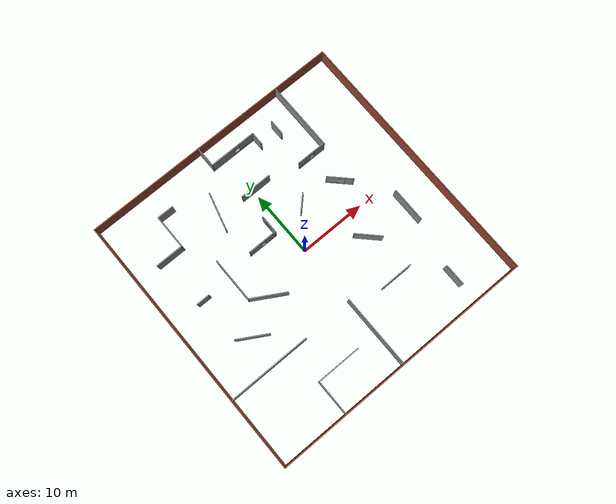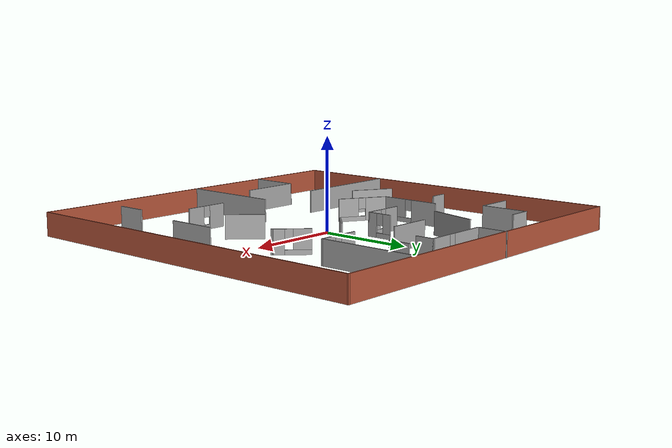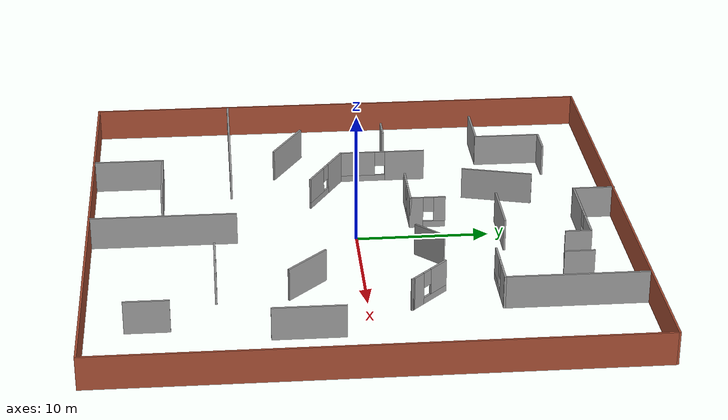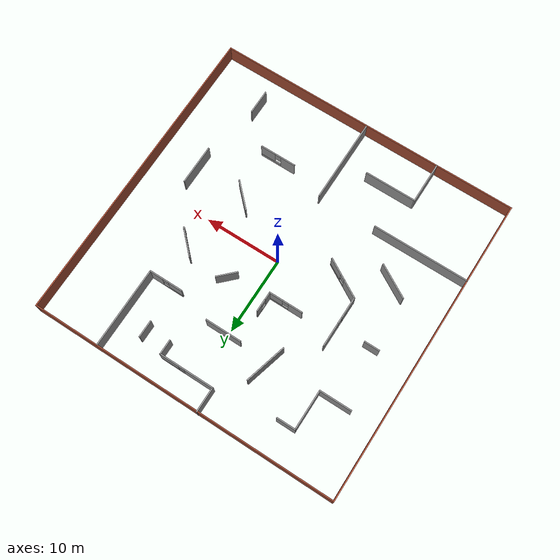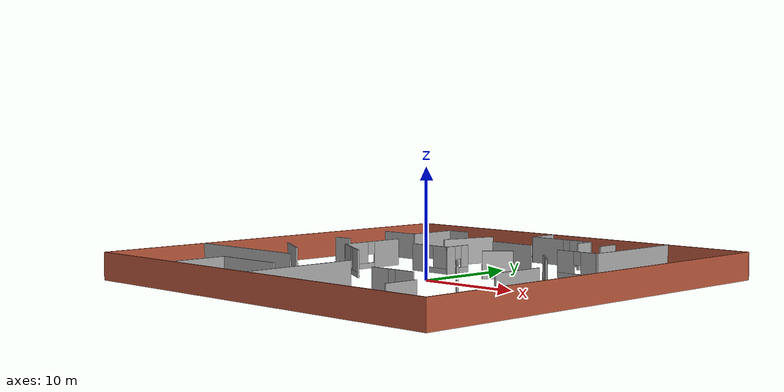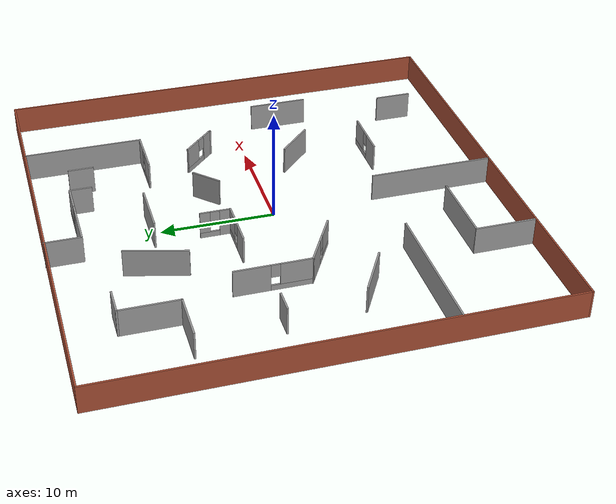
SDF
<?xml version='1.0'?>
<sdf version='1.6'>
  <model name='house'>
    <pose frame=''>0 0.01738 0 0 -0 0</pose>
    <link name='Wall_0'>
      <collision name='Wall_0_Collision'>
        <geometry>
          <box>
            <size>40.15 0.15 2.5</size>
          </box>
        </geometry>
        <pose frame=''>0 0 1.25 0 -0 0</pose>
      </collision>
      <visual name='Wall_0_Visual'>
        <pose frame=''>0 0 1.25 0 -0 0</pose>
        <geometry>
          <box>
            <size>40.15 0.15 2.5</size>
          </box>
        </geometry>
        <material>
          <script>
            <uri>file://media/materials/scripts/gazebo.material</uri>
            <name>Gazebo/Bricks</name>
          </script>
          <ambient>1 1 1 1</ambient>
        </material>
        <meta>
          <layer>0</layer>
        </meta>
      </visual>
      <pose frame=''>0 -20.0174 0 0 -0 0</pose>
    </link>
    <link name='Wall_10'>
      <collision name='Wall_10_Collision'>
        <geometry>
          <box>
            <size>2.5 0.15 2.5</size>
          </box>
        </geometry>
        <pose frame=''>0 0 1.25 0 -0 0</pose>
      </collision>
      <visual name='Wall_10_Visual'>
        <pose frame=''>0 0 1.25 0 -0 0</pose>
        <geometry>
          <box>
            <size>2.5 0.15 2.5</size>
          </box>
        </geometry>
        <material>
          <script>
            <uri>file://media/materials/scripts/gazebo.material</uri>
            <name>Gazebo/Grey</name>
          </script>
          <ambient>1 1 1 1</ambient>
        </material>
        <meta>
          <layer>0</layer>
        </meta>
      </visual>
      <pose frame=''>-11.265 15.818 0 0 -0 0</pose>
    </link>
    <link name='Wall_13'>
      <collision name='Wall_13_Collision'>
        <geometry>
          <box>
            <size>11 0.15 2.5</size>
          </box>
        </geometry>
        <pose frame=''>0 0 1.25 0 -0 0</pose>
      </collision>
      <visual name='Wall_13_Visual'>
        <pose frame=''>0 0 1.25 0 -0 0</pose>
        <geometry>
          <box>
            <size>11 0.15 2.5</size>
          </box>
        </geometry>
        <material>
          <script>
            <uri>file://media/materials/scripts/gazebo.material</uri>
            <name>Gazebo/Grey</name>
          </script>
          <ambient>1 1 1 1</ambient>
        </material>
        <meta>
          <layer>0</layer>
        </meta>
      </visual>
      <pose frame=''>-0.021227 -14.5085 0 0 -0 1.5708</pose>
    </link>
    <link name='Wall_15'>
      <collision name='Wall_15_Collision'>
        <geometry>
          <box>
            <size>12.5 0.15 2.5</size>
          </box>
        </geometry>
        <pose frame=''>0 0 1.25 0 -0 0</pose>
      </collision>
      <visual name='Wall_15_Visual'>
        <pose frame=''>0 0 1.25 0 -0 0</pose>
        <geometry>
          <box>
            <size>12.5 0.15 2.5</size>
          </box>
        </geometry>
        <material>
          <script>
            <uri>file://media/materials/scripts/gazebo.material</uri>
            <name>Gazebo/Grey</name>
          </script>
          <ambient>1 1 1 1</ambient>
        </material>
        <meta>
          <layer>0</layer>
        </meta>
      </visual>
      <pose frame=''>-13.7911 -9.28806 0 0 -0 0</pose>
    </link>
    <link name='Wall_18'>
      <collision name='Wall_18_Collision'>
        <geometry>
          <box>
            <size>5.5 0.15 2.5</size>
          </box>
        </geometry>
        <pose frame=''>0 0 1.25 0 -0 0</pose>
      </collision>
      <visual name='Wall_18_Visual'>
        <pose frame=''>0 0 1.25 0 -0 0</pose>
        <geometry>
          <box>
            <size>5.5 0.15 2.5</size>
          </box>
        </geometry>
        <material>
          <script>
            <uri>file://media/materials/scripts/gazebo.material</uri>
            <name>Gazebo/Grey</name>
          </script>
          <ambient>1 1 1 1</ambient>
        </material>
        <meta>
          <layer>0</layer>
        </meta>
      </visual>
      <pose frame=''>-9.87128 -17.3196 0 0 -0 1.5708</pose>
    </link>
    <link name='Wall_2'>
      <collision name='Wall_2_Collision'>
        <geometry>
          <box>
            <size>40.15 0.15 2.5</size>
          </box>
        </geometry>
        <pose frame=''>0 0 1.25 0 -0 0</pose>
      </collision>
      <visual name='Wall_2_Visual'>
        <pose frame=''>0 0 1.25 0 -0 0</pose>
        <geometry>
          <box>
            <size>40.15 0.15 2.5</size>
          </box>
        </geometry>
        <material>
          <script>
            <uri>file://media/materials/scripts/gazebo.material</uri>
            <name>Gazebo/Bricks</name>
          </script>
          <ambient>1 1 1 1</ambient>
        </material>
        <meta>
          <layer>0</layer>
        </meta>
      </visual>
      <pose frame=''>-20 -0.01738 0 0 -0 1.5708</pose>
    </link>
    <link name='Wall_20'>
      <collision name='Wall_20_Collision'>
        <geometry>
          <box>
            <size>6.75 0.15 2.5</size>
          </box>
        </geometry>
        <pose frame=''>0 0 1.25 0 -0 0</pose>
      </collision>
      <visual name='Wall_20_Visual'>
        <pose frame=''>0 0 1.25 0 -0 0</pose>
        <geometry>
          <box>
            <size>6.75 0.15 2.5</size>
          </box>
        </geometry>
        <material>
          <script>
            <uri>file://media/materials/scripts/gazebo.material</uri>
            <name>Gazebo/Grey</name>
          </script>
          <ambient>1 1 1 1</ambient>
        </material>
        <meta>
          <layer>0</layer>
        </meta>
      </visual>
      <pose frame=''>-6.57128 -14.6446 0 0 -0 0</pose>
    </link>
    <link name='Wall_22'>
      <collision name='Wall_22_Collision'>
        <geometry>
          <box>
            <size>0.25 0.15 2.5</size>
          </box>
        </geometry>
        <pose frame=''>0 0 1.25 0 -0 0</pose>
      </collision>
      <visual name='Wall_22_Visual'>
        <pose frame=''>0 0 1.25 0 -0 0</pose>
        <geometry>
          <box>
            <size>0.25 0.15 2.5</size>
          </box>
        </geometry>
        <material>
          <script>
            <uri>file://media/materials/scripts/gazebo.material</uri>
            <name>Gazebo/Grey</name>
          </script>
          <ambient>1 1 1 1</ambient>
        </material>
        <meta>
          <layer>0</layer>
        </meta>
      </visual>
      <pose frame=''>11.211 3.05252 0 0 -0 2.0944</pose>
    </link>
    <link name='Wall_23'>
      <pose frame=''>9.91319 4.36861 0 0 -0 2.35619</pose>
      <visual name='Wall_23_Visual_0'>
        <pose frame=''>-1.28689 0 1.25 0 -0 0</pose>
        <geometry>
          <box>
            <size>1.17622 0.15 2.5</size>
          </box>
        </geometry>
        <material>
          <script>
            <uri>file://media/materials/scripts/gazebo.material</uri>
            <name>Gazebo/Grey</name>
          </script>
          <ambient>1 1 1 1</ambient>
        </material>
        <meta>
          <layer>0</layer>
        </meta>
      </visual>
      <collision name='Wall_23_Collision_0'>
        <geometry>
          <box>
            <size>1.17622 0.15 2.5</size>
          </box>
        </geometry>
        <pose frame=''>-1.28689 0 1.25 0 -0 0</pose>
      </collision>
      <visual name='Wall_23_Visual_1'>
        <pose frame=''>0.588111 0 0.25 0 -0 0</pose>
        <geometry>
          <box>
            <size>2.57378 0.15 0.5</size>
          </box>
        </geometry>
        <material>
          <script>
            <uri>file://media/materials/scripts/gazebo.material</uri>
            <name>Gazebo/Grey</name>
          </script>
          <ambient>1 1 1 1</ambient>
        </material>
        <meta>
          <layer>0</layer>
        </meta>
      </visual>
      <collision name='Wall_23_Collision_1'>
        <geometry>
          <box>
            <size>2.57378 0.15 0.5</size>
          </box>
        </geometry>
        <pose frame=''>0.588111 0 0.25 0 -0 0</pose>
      </collision>
      <visual name='Wall_23_Visual_2'>
        <pose frame=''>0.988111 0 1.5 0 -0 0</pose>
        <geometry>
          <box>
            <size>1.77378 0.15 2</size>
          </box>
        </geometry>
        <material>
          <script>
            <uri>file://media/materials/scripts/gazebo.material</uri>
            <name>Gazebo/Grey</name>
          </script>
          <ambient>1 1 1 1</ambient>
        </material>
        <meta>
          <layer>0</layer>
        </meta>
      </visual>
      <collision name='Wall_23_Collision_2'>
        <geometry>
          <box>
            <size>1.77378 0.15 2</size>
          </box>
        </geometry>
        <pose frame=''>0.988111 0 1.5 0 -0 0</pose>
      </collision>
      <visual name='Wall_23_Visual_3'>
        <pose frame=''>-0.298779 0 1.9 0 -0 0</pose>
        <geometry>
          <box>
            <size>0.8 0.15 1.2</size>
          </box>
        </geometry>
        <material>
          <script>
            <uri>file://media/materials/scripts/gazebo.material</uri>
            <name>Gazebo/Grey</name>
          </script>
          <ambient>1 1 1 1</ambient>
        </material>
        <meta>
          <layer>0</layer>
        </meta>
      </visual>
      <collision name='Wall_23_Collision_3'>
        <geometry>
          <box>
            <size>0.8 0.15 1.2</size>
          </box>
        </geometry>
        <pose frame=''>-0.298779 0 1.9 0 -0 0</pose>
      </collision>
    </link>
    <link name='Wall_25'>
      <collision name='Wall_25_Collision'>
        <geometry>
          <box>
            <size>4.75 0.15 2.5</size>
          </box>
        </geometry>
        <pose frame=''>0 0 1.25 0 -0 0</pose>
      </collision>
      <visual name='Wall_25_Visual'>
        <pose frame=''>0 0 1.25 0 -0 0</pose>
        <geometry>
          <box>
            <size>4.75 0.15 2.5</size>
          </box>
        </geometry>
        <material>
          <script>
            <uri>file://media/materials/scripts/gazebo.material</uri>
            <name>Gazebo/Grey</name>
          </script>
          <ambient>1 1 1 1</ambient>
        </material>
        <meta>
          <layer>0</layer>
        </meta>
      </visual>
      <pose frame=''>0.382179 10.8403 0 0 -0 0</pose>
    </link>
    <link name='Wall_27'>
      <pose frame=''>-10.116 2.82942 0 0 -0 -1.5708</pose>
      <visual name='Wall_27_Visual_0'>
        <pose frame=''>-1.8027 0 1.25 0 -0 0</pose>
        <geometry>
          <box>
            <size>3.14461 0.15 2.5</size>
          </box>
        </geometry>
        <material>
          <script>
            <uri>file://media/materials/scripts/gazebo.material</uri>
            <name>Gazebo/Grey</name>
          </script>
          <ambient>1 1 1 1</ambient>
        </material>
        <meta>
          <layer>0</layer>
        </meta>
      </visual>
      <collision name='Wall_27_Collision_0'>
        <geometry>
          <box>
            <size>3.14461 0.15 2.5</size>
          </box>
        </geometry>
        <pose frame=''>-1.8027 0 1.25 0 -0 0</pose>
      </collision>
      <visual name='Wall_27_Visual_1'>
        <pose frame=''>1.5723 0 0.25 0 -0 0</pose>
        <geometry>
          <box>
            <size>3.60539 0.15 0.5</size>
          </box>
        </geometry>
        <material>
          <script>
            <uri>file://media/materials/scripts/gazebo.material</uri>
            <name>Gazebo/Grey</name>
          </script>
          <ambient>1 1 1 1</ambient>
        </material>
        <meta>
          <layer>0</layer>
        </meta>
      </visual>
      <collision name='Wall_27_Collision_1'>
        <geometry>
          <box>
            <size>3.60539 0.15 0.5</size>
          </box>
        </geometry>
        <pose frame=''>1.5723 0 0.25 0 -0 0</pose>
      </collision>
      <visual name='Wall_27_Visual_2'>
        <pose frame=''>1.9723 0 1.5 0 -0 0</pose>
        <geometry>
          <box>
            <size>2.80539 0.15 2</size>
          </box>
        </geometry>
        <material>
          <script>
            <uri>file://media/materials/scripts/gazebo.material</uri>
            <name>Gazebo/Grey</name>
          </script>
          <ambient>1 1 1 1</ambient>
        </material>
        <meta>
          <layer>0</layer>
        </meta>
      </visual>
      <collision name='Wall_27_Collision_2'>
        <geometry>
          <box>
            <size>2.80539 0.15 2</size>
          </box>
        </geometry>
        <pose frame=''>1.9723 0 1.5 0 -0 0</pose>
      </collision>
      <visual name='Wall_27_Visual_3'>
        <pose frame=''>0.169607 0 1.9 0 -0 0</pose>
        <geometry>
          <box>
            <size>0.8 0.15 1.2</size>
          </box>
        </geometry>
        <material>
          <script>
            <uri>file://media/materials/scripts/gazebo.material</uri>
            <name>Gazebo/Grey</name>
          </script>
          <ambient>1 1 1 1</ambient>
        </material>
        <meta>
          <layer>0</layer>
        </meta>
      </visual>
      <collision name='Wall_27_Collision_3'>
        <geometry>
          <box>
            <size>0.8 0.15 1.2</size>
          </box>
        </geometry>
        <pose frame=''>0.169607 0 1.9 0 -0 0</pose>
      </collision>
    </link>
    <link name='Wall_28'>
      <pose frame=''>-7.79938 -1.80808 0 0 -0 -0.523599</pose>
      <visual name='Wall_28_Visual_0'>
        <pose frame=''>-1.51732 0 1.25 0 -0 0</pose>
        <geometry>
          <box>
            <size>2.46536 0.15 2.5</size>
          </box>
        </geometry>
        <material>
          <script>
            <uri>file://media/materials/scripts/gazebo.material</uri>
            <name>Gazebo/Grey</name>
          </script>
          <ambient>1 1 1 1</ambient>
        </material>
        <meta>
          <layer>0</layer>
        </meta>
      </visual>
      <collision name='Wall_28_Collision_0'>
        <geometry>
          <box>
            <size>2.46536 0.15 2.5</size>
          </box>
        </geometry>
        <pose frame=''>-1.51732 0 1.25 0 -0 0</pose>
      </collision>
      <visual name='Wall_28_Visual_1'>
        <pose frame=''>1.23268 0 0.25 0 -0 0</pose>
        <geometry>
          <box>
            <size>3.03464 0.15 0.5</size>
          </box>
        </geometry>
        <material>
          <script>
            <uri>file://media/materials/scripts/gazebo.material</uri>
            <name>Gazebo/Grey</name>
          </script>
          <ambient>1 1 1 1</ambient>
        </material>
        <meta>
          <layer>0</layer>
        </meta>
      </visual>
      <collision name='Wall_28_Collision_1'>
        <geometry>
          <box>
            <size>3.03464 0.15 0.5</size>
          </box>
        </geometry>
        <pose frame=''>1.23268 0 0.25 0 -0 0</pose>
      </collision>
      <visual name='Wall_28_Visual_2'>
        <pose frame=''>1.63268 0 1.5 0 -0 0</pose>
        <geometry>
          <box>
            <size>2.23464 0.15 2</size>
          </box>
        </geometry>
        <material>
          <script>
            <uri>file://media/materials/scripts/gazebo.material</uri>
            <name>Gazebo/Grey</name>
          </script>
          <ambient>1 1 1 1</ambient>
        </material>
        <meta>
          <layer>0</layer>
        </meta>
      </visual>
      <collision name='Wall_28_Collision_2'>
        <geometry>
          <box>
            <size>2.23464 0.15 2</size>
          </box>
        </geometry>
        <pose frame=''>1.63268 0 1.5 0 -0 0</pose>
      </collision>
      <visual name='Wall_28_Visual_3'>
        <pose frame=''>0.115362 0 1.9 0 -0 0</pose>
        <geometry>
          <box>
            <size>0.8 0.15 1.2</size>
          </box>
        </geometry>
        <material>
          <script>
            <uri>file://media/materials/scripts/gazebo.material</uri>
            <name>Gazebo/Grey</name>
          </script>
          <ambient>1 1 1 1</ambient>
        </material>
        <meta>
          <layer>0</layer>
        </meta>
      </visual>
      <collision name='Wall_28_Collision_3'>
        <geometry>
          <box>
            <size>0.8 0.15 1.2</size>
          </box>
        </geometry>
        <pose frame=''>0.115362 0 1.9 0 -0 0</pose>
      </collision>
    </link>
    <link name='Wall_30'>
      <collision name='Wall_30_Collision'>
        <geometry>
          <box>
            <size>4 0.15 2.5</size>
          </box>
        </geometry>
        <pose frame=''>0 0 1.25 0 -0 0</pose>
      </collision>
      <visual name='Wall_30_Visual'>
        <pose frame=''>0 0 1.25 0 -0 0</pose>
        <geometry>
          <box>
            <size>4 0.15 2.5</size>
          </box>
        </geometry>
        <material>
          <script>
            <uri>file://media/materials/scripts/gazebo.material</uri>
            <name>Gazebo/Grey</name>
          </script>
          <ambient>1 1 1 1</ambient>
        </material>
        <meta>
          <layer>0</layer>
        </meta>
      </visual>
      <pose frame=''>7.70272 -4.16411 0 0 -0 -0.785398</pose>
    </link>
    <link name='Wall_32'>
      <pose frame=''>6.92849 -10.7564 0 0 -0 0</pose>
      <visual name='Wall_32_Visual_0'>
        <pose frame=''>-1.40369 0 1.25 0 -0 0</pose>
        <geometry>
          <box>
            <size>1.94263 0.15 2.5</size>
          </box>
        </geometry>
        <material>
          <script>
            <uri>file://media/materials/scripts/gazebo.material</uri>
            <name>Gazebo/Grey</name>
          </script>
          <ambient>1 1 1 1</ambient>
        </material>
        <meta>
          <layer>0</layer>
        </meta>
      </visual>
      <collision name='Wall_32_Collision_0'>
        <geometry>
          <box>
            <size>1.94263 0.15 2.5</size>
          </box>
        </geometry>
        <pose frame=''>-1.40369 0 1.25 0 -0 0</pose>
      </collision>
      <visual name='Wall_32_Visual_1'>
        <pose frame=''>0.971313 0 0.25 0 -0 0</pose>
        <geometry>
          <box>
            <size>2.80737 0.15 0.5</size>
          </box>
        </geometry>
        <material>
          <script>
            <uri>file://media/materials/scripts/gazebo.material</uri>
            <name>Gazebo/Grey</name>
          </script>
          <ambient>1 1 1 1</ambient>
        </material>
        <meta>
          <layer>0</layer>
        </meta>
      </visual>
      <collision name='Wall_32_Collision_1'>
        <geometry>
          <box>
            <size>2.80737 0.15 0.5</size>
          </box>
        </geometry>
        <pose frame=''>0.971313 0 0.25 0 -0 0</pose>
      </collision>
      <visual name='Wall_32_Visual_2'>
        <pose frame=''>1.37131 0 1.5 0 -0 0</pose>
        <geometry>
          <box>
            <size>2.00738 0.15 2</size>
          </box>
        </geometry>
        <material>
          <script>
            <uri>file://media/materials/scripts/gazebo.material</uri>
            <name>Gazebo/Grey</name>
          </script>
          <ambient>1 1 1 1</ambient>
        </material>
        <meta>
          <layer>0</layer>
        </meta>
      </visual>
      <collision name='Wall_32_Collision_2'>
        <geometry>
          <box>
            <size>2.00738 0.15 2</size>
          </box>
        </geometry>
        <pose frame=''>1.37131 0 1.5 0 -0 0</pose>
      </collision>
      <visual name='Wall_32_Visual_3'>
        <pose frame=''>-0.032375 0 1.9 0 -0 0</pose>
        <geometry>
          <box>
            <size>0.8 0.15 1.2</size>
          </box>
        </geometry>
        <material>
          <script>
            <uri>file://media/materials/scripts/gazebo.material</uri>
            <name>Gazebo/Grey</name>
          </script>
          <ambient>1 1 1 1</ambient>
        </material>
        <meta>
          <layer>0</layer>
        </meta>
      </visual>
      <collision name='Wall_32_Collision_3'>
        <geometry>
          <box>
            <size>0.8 0.15 1.2</size>
          </box>
        </geometry>
        <pose frame=''>-0.032375 0 1.9 0 -0 0</pose>
      </collision>
    </link>
    <link name='Wall_34'>
      <collision name='Wall_34_Collision'>
        <geometry>
          <box>
            <size>3.25 0.15 2.5</size>
          </box>
        </geometry>
        <pose frame=''>0 0 1.25 0 -0 0</pose>
      </collision>
      <visual name='Wall_34_Visual'>
        <pose frame=''>0 0 1.25 0 -0 0</pose>
        <geometry>
          <box>
            <size>3.25 0.15 2.5</size>
          </box>
        </geometry>
        <material>
          <script>
            <uri>file://media/materials/scripts/gazebo.material</uri>
            <name>Gazebo/Grey</name>
          </script>
          <ambient>1 1 1 1</ambient>
        </material>
        <meta>
          <layer>0</layer>
        </meta>
      </visual>
      <pose frame=''>12.8879 -15.5692 0 0 -0 1.5708</pose>
    </link>
    <link name='Wall_36'>
      <collision name='Wall_36_Collision'>
        <geometry>
          <box>
            <size>2.25 0.15 2.5</size>
          </box>
        </geometry>
        <pose frame=''>0 0 1.25 0 -0 0</pose>
      </collision>
      <visual name='Wall_36_Visual'>
        <pose frame=''>0 0 1.25 0 -0 0</pose>
        <geometry>
          <box>
            <size>2.25 0.15 2.5</size>
          </box>
        </geometry>
        <material>
          <script>
            <uri>file://media/materials/scripts/gazebo.material</uri>
            <name>Gazebo/Grey</name>
          </script>
          <ambient>1 1 1 1</ambient>
        </material>
        <meta>
          <layer>0</layer>
        </meta>
      </visual>
      <pose frame=''>7.93223 15.5 0 0 -0 1.5708</pose>
    </link>
    <link name='Wall_38'>
      <collision name='Wall_38_Collision'>
        <geometry>
          <box>
            <size>2.75 0.15 2.5</size>
          </box>
        </geometry>
        <pose frame=''>0 0 1.25 0 -0 0</pose>
      </collision>
      <visual name='Wall_38_Visual'>
        <pose frame=''>0 0 1.25 0 -0 0</pose>
        <geometry>
          <box>
            <size>2.75 0.15 2.5</size>
          </box>
        </geometry>
        <material>
          <script>
            <uri>file://media/materials/scripts/gazebo.material</uri>
            <name>Gazebo/Grey</name>
          </script>
          <ambient>1 1 1 1</ambient>
        </material>
        <meta>
          <layer>0</layer>
        </meta>
      </visual>
      <pose frame=''>3.77349 5.09088 0 0 -0 0.785398</pose>
    </link>
    <link name='Wall_4'>
      <collision name='Wall_4_Collision'>
        <geometry>
          <box>
            <size>40.15 0.15 2.5</size>
          </box>
        </geometry>
        <pose frame=''>0 0 1.25 0 -0 0</pose>
      </collision>
      <visual name='Wall_4_Visual'>
        <pose frame=''>0 0 1.25 0 -0 0</pose>
        <geometry>
          <box>
            <size>40.15 0.15 2.5</size>
          </box>
        </geometry>
        <material>
          <script>
            <uri>file://media/materials/scripts/gazebo.material</uri>
            <name>Gazebo/Bricks</name>
          </script>
          <ambient>1 1 1 1</ambient>
        </material>
        <meta>
          <layer>0</layer>
        </meta>
      </visual>
      <pose frame=''>0 19.9826 0 0 -0 0</pose>
    </link>
    <link name='Wall_40'>
      <collision name='Wall_40_Collision'>
        <geometry>
          <box>
            <size>5.5 0.15 2.5</size>
          </box>
        </geometry>
        <pose frame=''>0 0 1.25 0 -0 0</pose>
      </collision>
      <visual name='Wall_40_Visual'>
        <pose frame=''>0 0 1.25 0 -0 0</pose>
        <geometry>
          <box>
            <size>5.5 0.15 2.5</size>
          </box>
        </geometry>
        <material>
          <script>
            <uri>file://media/materials/scripts/gazebo.material</uri>
            <name>Gazebo/Grey</name>
          </script>
          <ambient>1 1 1 1</ambient>
        </material>
        <meta>
          <layer>0</layer>
        </meta>
      </visual>
      <pose frame=''>-5.75283 11.4664 0 0 -0 1.309</pose>
    </link>
    <link name='Wall_42'>
      <collision name='Wall_42_Collision'>
        <geometry>
          <box>
            <size>2 0.15 2.5</size>
          </box>
        </geometry>
        <pose frame=''>0 0 1.25 0 -0 0</pose>
      </collision>
      <visual name='Wall_42_Visual'>
        <pose frame=''>0 0 1.25 0 -0 0</pose>
        <geometry>
          <box>
            <size>2 0.15 2.5</size>
          </box>
        </geometry>
        <material>
          <script>
            <uri>file://media/materials/scripts/gazebo.material</uri>
            <name>Gazebo/Grey</name>
          </script>
          <ambient>1 1 1 1</ambient>
        </material>
        <meta>
          <layer>0</layer>
        </meta>
      </visual>
      <pose frame=''>-14.7118 3.25394 0 0 -0 3.14159</pose>
    </link>
    <link name='Wall_45'>
      <collision name='Wall_45_Collision'>
        <geometry>
          <box>
            <size>10.5 0.15 2.5</size>
          </box>
        </geometry>
        <pose frame=''>0 0 1.25 0 -0 0</pose>
      </collision>
      <visual name='Wall_45_Visual'>
        <pose frame=''>0 0 1.25 0 -0 0</pose>
        <geometry>
          <box>
            <size>10.5 0.15 2.5</size>
          </box>
        </geometry>
        <material>
          <script>
            <uri>file://media/materials/scripts/gazebo.material</uri>
            <name>Gazebo/Grey</name>
          </script>
          <ambient>1 1 1 1</ambient>
        </material>
        <meta>
          <layer>0</layer>
        </meta>
      </visual>
      <pose frame=''>11.4195 14.72 0 0 -0 -1.5708</pose>
    </link>
    <link name='Wall_46'>
      <pose frame=''>9.24452 9.54502 0 0 -0 3.14159</pose>
      <visual name='Wall_46_Visual_0'>
        <pose frame=''>-1.34506 0 1.25 0 -0 0</pose>
        <geometry>
          <box>
            <size>1.80987 0.15 2.5</size>
          </box>
        </geometry>
        <material>
          <script>
            <uri>file://media/materials/scripts/gazebo.material</uri>
            <name>Gazebo/Grey</name>
          </script>
          <ambient>1 1 1 1</ambient>
        </material>
        <meta>
          <layer>0</layer>
        </meta>
      </visual>
      <collision name='Wall_46_Collision_0'>
        <geometry>
          <box>
            <size>1.80987 0.15 2.5</size>
          </box>
        </geometry>
        <pose frame=''>-1.34506 0 1.25 0 -0 0</pose>
      </collision>
      <visual name='Wall_46_Visual_1'>
        <pose frame=''>0.904936 0 0.25 0 -0 0</pose>
        <geometry>
          <box>
            <size>2.69013 0.15 0.5</size>
          </box>
        </geometry>
        <material>
          <script>
            <uri>file://media/materials/scripts/gazebo.material</uri>
            <name>Gazebo/Grey</name>
          </script>
          <ambient>1 1 1 1</ambient>
        </material>
        <meta>
          <layer>0</layer>
        </meta>
      </visual>
      <collision name='Wall_46_Collision_1'>
        <geometry>
          <box>
            <size>2.69013 0.15 0.5</size>
          </box>
        </geometry>
        <pose frame=''>0.904936 0 0.25 0 -0 0</pose>
      </collision>
      <visual name='Wall_46_Visual_2'>
        <pose frame=''>1.30494 0 1.5 0 -0 0</pose>
        <geometry>
          <box>
            <size>1.89013 0.15 2</size>
          </box>
        </geometry>
        <material>
          <script>
            <uri>file://media/materials/scripts/gazebo.material</uri>
            <name>Gazebo/Grey</name>
          </script>
          <ambient>1 1 1 1</ambient>
        </material>
        <meta>
          <layer>0</layer>
        </meta>
      </visual>
      <collision name='Wall_46_Collision_2'>
        <geometry>
          <box>
            <size>1.89013 0.15 2</size>
          </box>
        </geometry>
        <pose frame=''>1.30494 0 1.5 0 -0 0</pose>
      </collision>
      <visual name='Wall_46_Visual_3'>
        <pose frame=''>-0.040128 0 1.9 0 -0 0</pose>
        <geometry>
          <box>
            <size>0.8 0.15 1.2</size>
          </box>
        </geometry>
        <material>
          <script>
            <uri>file://media/materials/scripts/gazebo.material</uri>
            <name>Gazebo/Grey</name>
          </script>
          <ambient>1 1 1 1</ambient>
        </material>
        <meta>
          <layer>0</layer>
        </meta>
      </visual>
      <collision name='Wall_46_Collision_3'>
        <geometry>
          <box>
            <size>0.8 0.15 1.2</size>
          </box>
        </geometry>
        <pose frame=''>-0.040128 0 1.9 0 -0 0</pose>
      </collision>
    </link>
    <link name='Wall_48'>
      <collision name='Wall_48_Collision'>
        <geometry>
          <box>
            <size>3.25 0.15 2.5</size>
          </box>
        </geometry>
        <pose frame=''>0 0 1.25 0 -0 0</pose>
      </collision>
      <visual name='Wall_48_Visual'>
        <pose frame=''>0 0 1.25 0 -0 0</pose>
        <geometry>
          <box>
            <size>3.25 0.15 2.5</size>
          </box>
        </geometry>
        <material>
          <script>
            <uri>file://media/materials/scripts/gazebo.material</uri>
            <name>Gazebo/Grey</name>
          </script>
          <ambient>1 1 1 1</ambient>
        </material>
        <meta>
          <layer>0</layer>
        </meta>
      </visual>
      <pose frame=''>-2.2849 18.4674 0 0 -0 -1.5708</pose>
    </link>
    <link name='Wall_49'>
      <pose frame=''>1.2651 16.9174 0 0 -0 0</pose>
      <visual name='Wall_49_Visual_0'>
        <pose frame=''>-1.67355 0 1.25 0 -0 0</pose>
        <geometry>
          <box>
            <size>3.9029 0.15 2.5</size>
          </box>
        </geometry>
        <material>
          <script>
            <uri>file://media/materials/scripts/gazebo.material</uri>
            <name>Gazebo/Grey</name>
          </script>
          <ambient>1 1 1 1</ambient>
        </material>
        <meta>
          <layer>0</layer>
        </meta>
      </visual>
      <collision name='Wall_49_Collision_0'>
        <geometry>
          <box>
            <size>3.9029 0.15 2.5</size>
          </box>
        </geometry>
        <pose frame=''>-1.67355 0 1.25 0 -0 0</pose>
      </collision>
      <visual name='Wall_49_Visual_1'>
        <pose frame=''>1.95145 0 0.25 0 -0 0</pose>
        <geometry>
          <box>
            <size>3.3471 0.15 0.5</size>
          </box>
        </geometry>
        <material>
          <script>
            <uri>file://media/materials/scripts/gazebo.material</uri>
            <name>Gazebo/Grey</name>
          </script>
          <ambient>1 1 1 1</ambient>
        </material>
        <meta>
          <layer>0</layer>
        </meta>
      </visual>
      <collision name='Wall_49_Collision_1'>
        <geometry>
          <box>
            <size>3.3471 0.15 0.5</size>
          </box>
        </geometry>
        <pose frame=''>1.95145 0 0.25 0 -0 0</pose>
      </collision>
      <visual name='Wall_49_Visual_2'>
        <pose frame=''>2.35145 0 1.5 0 -0 0</pose>
        <geometry>
          <box>
            <size>2.54711 0.15 2</size>
          </box>
        </geometry>
        <material>
          <script>
            <uri>file://media/materials/scripts/gazebo.material</uri>
            <name>Gazebo/Grey</name>
          </script>
          <ambient>1 1 1 1</ambient>
        </material>
        <meta>
          <layer>0</layer>
        </meta>
      </visual>
      <collision name='Wall_49_Collision_2'>
        <geometry>
          <box>
            <size>2.54711 0.15 2</size>
          </box>
        </geometry>
        <pose frame=''>2.35145 0 1.5 0 -0 0</pose>
      </collision>
      <visual name='Wall_49_Visual_3'>
        <pose frame=''>0.677895 0 1.9 0 -0 0</pose>
        <geometry>
          <box>
            <size>0.8 0.15 1.2</size>
          </box>
        </geometry>
        <material>
          <script>
            <uri>file://media/materials/scripts/gazebo.material</uri>
            <name>Gazebo/Grey</name>
          </script>
          <ambient>1 1 1 1</ambient>
        </material>
        <meta>
          <layer>0</layer>
        </meta>
      </visual>
      <collision name='Wall_49_Collision_3'>
        <geometry>
          <box>
            <size>0.8 0.15 1.2</size>
          </box>
        </geometry>
        <pose frame=''>0.677895 0 1.9 0 -0 0</pose>
      </collision>
    </link>
    <link name='Wall_50'>
      <collision name='Wall_50_Collision'>
        <geometry>
          <box>
            <size>2 0.15 2.5</size>
          </box>
        </geometry>
        <pose frame=''>0 0 1.25 0 -0 0</pose>
      </collision>
      <visual name='Wall_50_Visual'>
        <pose frame=''>0 0 1.25 0 -0 0</pose>
        <geometry>
          <box>
            <size>2 0.15 2.5</size>
          </box>
        </geometry>
        <material>
          <script>
            <uri>file://media/materials/scripts/gazebo.material</uri>
            <name>Gazebo/Grey</name>
          </script>
          <ambient>1 1 1 1</ambient>
        </material>
        <meta>
          <layer>0</layer>
        </meta>
      </visual>
      <pose frame=''>4.8151 15.9924 0 0 -0 -1.5708</pose>
    </link>
    <link name='Wall_53'>
      <collision name='Wall_53_Collision'>
        <geometry>
          <box>
            <size>4.75 0.15 2.5</size>
          </box>
        </geometry>
        <pose frame=''>0 0 1.25 0 -0 0</pose>
      </collision>
      <visual name='Wall_53_Visual'>
        <pose frame=''>0 0 1.25 0 -0 0</pose>
        <geometry>
          <box>
            <size>4.75 0.15 2.5</size>
          </box>
        </geometry>
        <material>
          <script>
            <uri>file://media/materials/scripts/gazebo.material</uri>
            <name>Gazebo/Grey</name>
          </script>
          <ambient>1 1 1 1</ambient>
        </material>
        <meta>
          <layer>0</layer>
        </meta>
      </visual>
      <pose frame=''>-12.835 -4.62591 0 0 -0 -0.523599</pose>
    </link>
    <link name='Wall_55'>
      <pose frame=''>-3.78073 4.23282 0 0 -0 0</pose>
      <visual name='Wall_55_Visual_0'>
        <pose frame=''>-1.31125 0 1.25 0 -0 0</pose>
        <geometry>
          <box>
            <size>1.8775 0.15 2.5</size>
          </box>
        </geometry>
        <material>
          <script>
            <uri>file://media/materials/scripts/gazebo.material</uri>
            <name>Gazebo/Grey</name>
          </script>
          <ambient>1 1 1 1</ambient>
        </material>
        <meta>
          <layer>0</layer>
        </meta>
      </visual>
      <collision name='Wall_55_Collision_0'>
        <geometry>
          <box>
            <size>1.8775 0.15 2.5</size>
          </box>
        </geometry>
        <pose frame=''>-1.31125 0 1.25 0 -0 0</pose>
      </collision>
      <visual name='Wall_55_Visual_1'>
        <pose frame=''>0.938748 0 0.25 0 -0 0</pose>
        <geometry>
          <box>
            <size>2.6225 0.15 0.5</size>
          </box>
        </geometry>
        <material>
          <script>
            <uri>file://media/materials/scripts/gazebo.material</uri>
            <name>Gazebo/Grey</name>
          </script>
          <ambient>1 1 1 1</ambient>
        </material>
        <meta>
          <layer>0</layer>
        </meta>
      </visual>
      <collision name='Wall_55_Collision_1'>
        <geometry>
          <box>
            <size>2.6225 0.15 0.5</size>
          </box>
        </geometry>
        <pose frame=''>0.938748 0 0.25 0 -0 0</pose>
      </collision>
      <visual name='Wall_55_Visual_2'>
        <pose frame=''>1.33875 0 1.5 0 -0 0</pose>
        <geometry>
          <box>
            <size>1.8225 0.15 2</size>
          </box>
        </geometry>
        <material>
          <script>
            <uri>file://media/materials/scripts/gazebo.material</uri>
            <name>Gazebo/Grey</name>
          </script>
          <ambient>1 1 1 1</ambient>
        </material>
        <meta>
          <layer>0</layer>
        </meta>
      </visual>
      <collision name='Wall_55_Collision_2'>
        <geometry>
          <box>
            <size>1.8225 0.15 2</size>
          </box>
        </geometry>
        <pose frame=''>1.33875 0 1.5 0 -0 0</pose>
      </collision>
      <visual name='Wall_55_Visual_3'>
        <pose frame=''>0.027496 0 1.9 0 -0 0</pose>
        <geometry>
          <box>
            <size>0.8 0.15 1.2</size>
          </box>
        </geometry>
        <material>
          <script>
            <uri>file://media/materials/scripts/gazebo.material</uri>
            <name>Gazebo/Grey</name>
          </script>
          <ambient>1 1 1 1</ambient>
        </material>
        <meta>
          <layer>0</layer>
        </meta>
      </visual>
      <collision name='Wall_55_Collision_3'>
        <geometry>
          <box>
            <size>0.8 0.15 1.2</size>
          </box>
        </geometry>
        <pose frame=''>0.027496 0 1.9 0 -0 0</pose>
      </collision>
    </link>
    <link name='Wall_56'>
      <pose frame=''>-1.60573 5.53282 0 0 -0 1.5708</pose>
      <visual name='Wall_56_Visual_0'>
        <pose frame=''>-0.851336 0 1.25 0 -0 0</pose>
        <geometry>
          <box>
            <size>1.04733 0.15 2.5</size>
          </box>
        </geometry>
        <material>
          <script>
            <uri>file://media/materials/scripts/gazebo.material</uri>
            <name>Gazebo/Grey</name>
          </script>
          <ambient>1 1 1 1</ambient>
        </material>
        <meta>
          <layer>0</layer>
        </meta>
      </visual>
      <collision name='Wall_56_Collision_0'>
        <geometry>
          <box>
            <size>1.04733 0.15 2.5</size>
          </box>
        </geometry>
        <pose frame=''>-0.851336 0 1.25 0 -0 0</pose>
      </collision>
      <visual name='Wall_56_Visual_1'>
        <pose frame=''>0.523664 0 0.25 0 -0 0</pose>
        <geometry>
          <box>
            <size>1.70267 0.15 0.5</size>
          </box>
        </geometry>
        <material>
          <script>
            <uri>file://media/materials/scripts/gazebo.material</uri>
            <name>Gazebo/Grey</name>
          </script>
          <ambient>1 1 1 1</ambient>
        </material>
        <meta>
          <layer>0</layer>
        </meta>
      </visual>
      <collision name='Wall_56_Collision_1'>
        <geometry>
          <box>
            <size>1.70267 0.15 0.5</size>
          </box>
        </geometry>
        <pose frame=''>0.523664 0 0.25 0 -0 0</pose>
      </collision>
      <visual name='Wall_56_Visual_2'>
        <pose frame=''>0.923664 0 1.5 0 -0 0</pose>
        <geometry>
          <box>
            <size>0.902672 0.15 2</size>
          </box>
        </geometry>
        <material>
          <script>
            <uri>file://media/materials/scripts/gazebo.material</uri>
            <name>Gazebo/Grey</name>
          </script>
          <ambient>1 1 1 1</ambient>
        </material>
        <meta>
          <layer>0</layer>
        </meta>
      </visual>
      <collision name='Wall_56_Collision_2'>
        <geometry>
          <box>
            <size>0.902672 0.15 2</size>
          </box>
        </geometry>
        <pose frame=''>0.923664 0 1.5 0 -0 0</pose>
      </collision>
      <visual name='Wall_56_Visual_3'>
        <pose frame=''>0.072328 0 1.9 0 -0 0</pose>
        <geometry>
          <box>
            <size>0.8 0.15 1.2</size>
          </box>
        </geometry>
        <material>
          <script>
            <uri>file://media/materials/scripts/gazebo.material</uri>
            <name>Gazebo/Grey</name>
          </script>
          <ambient>1 1 1 1</ambient>
        </material>
        <meta>
          <layer>0</layer>
        </meta>
      </visual>
      <collision name='Wall_56_Collision_3'>
        <geometry>
          <box>
            <size>0.8 0.15 1.2</size>
          </box>
        </geometry>
        <pose frame=''>0.072328 0 1.9 0 -0 0</pose>
      </collision>
    </link>
    <link name='Wall_58'>
      <collision name='Wall_58_Collision'>
        <geometry>
          <box>
            <size>5.25 0.15 2.5</size>
          </box>
        </geometry>
        <pose frame=''>0 0 1.25 0 -0 0</pose>
      </collision>
      <visual name='Wall_58_Visual'>
        <pose frame=''>0 0 1.25 0 -0 0</pose>
        <geometry>
          <box>
            <size>5.25 0.15 2.5</size>
          </box>
        </geometry>
        <material>
          <script>
            <uri>file://media/materials/scripts/gazebo.material</uri>
            <name>Gazebo/Grey</name>
          </script>
          <ambient>1 1 1 1</ambient>
        </material>
        <meta>
          <layer>0</layer>
        </meta>
      </visual>
      <pose frame=''>14.5397 -4.43522 0 0 -0 -1.5708</pose>
    </link>
    <link name='Wall_6'>
      <collision name='Wall_6_Collision'>
        <geometry>
          <box>
            <size>40.15 0.15 2.5</size>
          </box>
        </geometry>
        <pose frame=''>0 0 1.25 0 -0 0</pose>
      </collision>
      <visual name='Wall_6_Visual'>
        <pose frame=''>0 0 1.25 0 -0 0</pose>
        <geometry>
          <box>
            <size>40.15 0.15 2.5</size>
          </box>
        </geometry>
        <material>
          <script>
            <uri>file://media/materials/scripts/gazebo.material</uri>
            <name>Gazebo/Bricks</name>
          </script>
          <ambient>1 1 1 1</ambient>
        </material>
        <meta>
          <layer>0</layer>
        </meta>
      </visual>
      <pose frame=''>20 -0.01738 0 0 -0 1.5708</pose>
    </link>
    <link name='Wall_8'>
      <collision name='Wall_8_Collision'>
        <geometry>
          <box>
            <size>4.25 0.15 2.5</size>
          </box>
        </geometry>
        <pose frame=''>0 0 1.25 0 -0 0</pose>
      </collision>
      <visual name='Wall_8_Visual'>
        <pose frame=''>0 0 1.25 0 -0 0</pose>
        <geometry>
          <box>
            <size>4.25 0.15 2.5</size>
          </box>
        </geometry>
        <material>
          <script>
            <uri>file://media/materials/scripts/gazebo.material</uri>
            <name>Gazebo/Grey</name>
          </script>
          <ambient>1 1 1 1</ambient>
        </material>
        <meta>
          <layer>0</layer>
        </meta>
      </visual>
      <pose frame=''>-14.49 10.718 0 0 -0 0</pose>
    </link>
    <link name='Wall_9'>
      <collision name='Wall_9_Collision'>
        <geometry>
          <box>
            <size>5.25 0.15 2.5</size>
          </box>
        </geometry>
        <pose frame=''>0 0 1.25 0 -0 0</pose>
      </collision>
      <visual name='Wall_9_Visual'>
        <pose frame=''>0 0 1.25 0 -0 0</pose>
        <geometry>
          <box>
            <size>5.25 0.15 2.5</size>
          </box>
        </geometry>
        <material>
          <script>
            <uri>file://media/materials/scripts/gazebo.material</uri>
            <name>Gazebo/Grey</name>
          </script>
          <ambient>1 1 1 1</ambient>
        </material>
        <meta>
          <layer>0</layer>
        </meta>
      </visual>
      <pose frame=''>-12.4399 13.268 0 0 -0 1.5708</pose>
    </link>
    <static>1</static>
  </model>
</sdf>
